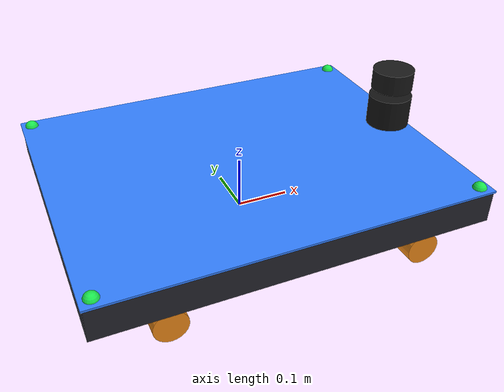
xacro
<?xml version="1.0"?>
<robot name="amr" xmlns:xacro="http://www.ros.org/wiki/xacro">

  <xacro:arg name="use_sim" default="false"/>
  <xacro:include filename="$(find amr_description)/urdf/wheels.urdf.xacro"/>
  <xacro:include filename="$(find amr_description)/urdf/sensors.urdf.xacro"/>

  <!-- Robot dimensions: 71.5cm long, 56.5cm wide (measured) -->
  <!-- MEASURE lx (half-wheelbase) and ly (half-track) from physical frame -->
  <xacro:property name="lx" value="0.231"/>  <!-- half front-to-rear axle distance: 46.2cm/2 (measured) -->
  <xacro:property name="ly" value="0.255"/>  <!-- half left-to-right axle distance: 51.0cm/2 (measured) -->
  <xacro:property name="wheel_z" value="-0.060"/>  <!-- wheel centre height from base_link -->

  <!-- Base footprint -->
  <link name="base_footprint"/>
  <joint name="base_footprint_joint" type="fixed">
    <parent link="base_footprint"/>
    <child  link="base_link"/>
    <origin xyz="0 0 0.080" rpy="0 0 0"/>
  </joint>

  <!-- Main chassis -->
  <link name="base_link">
    <!-- Charcoal body -->
    <visual name="chassis_body">
      <geometry><box size="0.715 0.565 0.060"/></geometry>
      <material name="charcoal"><color rgba="0.15 0.15 0.18 1"/></material>
    </visual>
    <!-- Bright blue perimeter accent strip -->
    <visual name="chassis_accent">
      <origin xyz="0 0 0.032" rpy="0 0 0"/>
      <geometry><box size="0.720 0.570 0.004"/></geometry>
      <material name="blue_accent"><color rgba="0.2 0.5 1.0 1"/></material>
    </visual>
    <collision>
      <geometry><box size="0.715 0.565 0.060"/></geometry>
    </collision>
    <inertial>
      <mass value="8.000"/>
      <!-- ixx=(1/12)*8*(0.565²+0.060²), iyy=(1/12)*8*(0.715²+0.060²), izz=(1/12)*8*(0.715²+0.565²) -->
      <inertia ixx="0.2152" iyy="0.3432" izz="0.5537"
               ixy="0" ixz="0" iyz="0"/>
    </inertial>
  </link>

  <!-- Four mecanum wheels: FL, FR, RL, RR -->
  <xacro:mecanum_wheel name="wheel_FL" x=" ${lx}" y=" ${ly}" z="${wheel_z}" reflect_y="1"/>
  <xacro:mecanum_wheel name="wheel_FR" x=" ${lx}" y="-${ly}" z="${wheel_z}" reflect_y="-1"/>
  <xacro:mecanum_wheel name="wheel_RL" x="-${lx}" y=" ${ly}" z="${wheel_z}" reflect_y="1"/>
  <xacro:mecanum_wheel name="wheel_RR" x="-${lx}" y="-${ly}" z="${wheel_z}" reflect_y="-1"/>

  <!-- Sensor tower — matte black cylinder stack below LiDAR -->
  <link name="sensor_tower">
    <visual>
      <geometry><cylinder radius="0.042" length="0.065"/></geometry>
      <material name="matte_black"><color rgba="0.08 0.08 0.08 1"/></material>
    </visual>
  </link>
  <joint name="sensor_tower_joint" type="fixed">
    <parent link="base_link"/>
    <child  link="sensor_tower"/>
    <origin xyz="0.327 0.0 0.063" rpy="0 0 0"/>
  </joint>

  <!-- Corner LED indicator spheres -->
  <xacro:macro name="corner_led" params="name x y">
    <link name="${name}">
      <visual>
        <geometry><sphere radius="0.013"/></geometry>
        <material name="led_green"><color rgba="0.1 0.9 0.3 1"/></material>
      </visual>
    </link>
    <joint name="${name}_joint" type="fixed">
      <parent link="base_link"/>
      <child  link="${name}"/>
      <origin xyz="${x} ${y} 0.032" rpy="0 0 0"/>
    </joint>
  </xacro:macro>

  <xacro:corner_led name="led_FL" x=" 0.340" y=" 0.265"/>
  <xacro:corner_led name="led_FR" x=" 0.340" y="-0.265"/>
  <xacro:corner_led name="led_RL" x="-0.340" y=" 0.265"/>
  <xacro:corner_led name="led_RR" x="-0.340" y="-0.265"/>

  <!-- ros2_control hardware interface — switches between sim and real -->
  <ros2_control name="AMRSystem" type="system">
    <hardware>
      <xacro:if value="$(arg use_sim)">
        <plugin>gz_ros2_control/GazeboSimSystem</plugin>
      </xacro:if>
      <xacro:unless value="$(arg use_sim)">
        <plugin>amr_hardware/AMRHardwareInterface</plugin>
        <param name="serial_port">/dev/amr_mcu</param>
        <param name="baud_rate">115200</param>
      </xacro:unless>
    </hardware>

    <xacro:macro name="wheel_joint_interface" params="name">
      <joint name="${name}_joint">
        <command_interface name="velocity">
          <param name="min">-37.6</param>
          <param name="max"> 37.6</param>
        </command_interface>
        <state_interface name="velocity"/>
        <state_interface name="position"/>
      </joint>
    </xacro:macro>

    <xacro:wheel_joint_interface name="wheel_FL"/>
    <xacro:wheel_joint_interface name="wheel_FR"/>
    <xacro:wheel_joint_interface name="wheel_RL"/>
    <xacro:wheel_joint_interface name="wheel_RR"/>
  </ros2_control>

</robot>

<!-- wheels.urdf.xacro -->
<robot xmlns:xacro="http://www.ros.org/wiki/xacro">

  <xacro:macro name="mecanum_wheel" params="name x y z reflect_y">
    <link name="${name}">
      <visual>
        <geometry><cylinder length="0.04" radius="0.030"/></geometry>
        <origin xyz="0 0 0" rpy="${pi/2} 0 0"/>
        <material name="orange_wheel"><color rgba="0.95 0.55 0.1 1"/></material>
      </visual>
      <collision>
        <geometry><cylinder length="0.04" radius="0.030"/></geometry>
        <origin xyz="0 0 0" rpy="${pi/2} 0 0"/>
      </collision>
      <inertial>
        <mass value="0.300"/>
        <inertia ixx="0.000900" iyy="0.000900" izz="0.000135"
                 ixy="0" ixz="0" iyz="0"/>
      </inertial>
    </link>

    <joint name="${name}_joint" type="continuous">
      <parent link="base_link"/>
      <child  link="${name}"/>
      <origin xyz="${x} ${y} ${z}" rpy="0 0 0"/>
      <axis xyz="0 1 0"/>
      <dynamics damping="0.01" friction="0.1"/>
    </joint>
  </xacro:macro>

</robot>

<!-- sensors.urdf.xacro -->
<robot xmlns:xacro="http://www.ros.org/wiki/xacro">

  <!-- LiDAR mount — MEASURE actual offsets from frame -->
  <link name="base_laser">
    <visual>
      <geometry><cylinder length="0.04" radius="0.04"/></geometry>
      <material name="black"><color rgba="0.1 0.1 0.1 1"/></material>
    </visual>
  </link>
  <joint name="base_laser_joint" type="fixed">
    <parent link="base_link"/>
    <child  link="base_laser"/>
    <origin xyz="0.327 0.0 0.13" rpy="0 0 ${pi}"/>
  </joint>

  <!-- IMU mount -->
  <link name="imu_link"/>
  <joint name="imu_joint" type="fixed">
    <parent link="base_link"/>
    <child  link="imu_link"/>
    <origin xyz="0.0 0.0 0.020" rpy="0 0 0"/>  <!-- UPDATE with measured offset -->
  </joint>

  <!-- Gazebo sensor plugins (only active when use_sim:=true) -->
  <xacro:if value="$(arg use_sim)">

    <!-- LiDAR -->
    <gazebo reference="base_laser">
      <sensor name="lidar" type="gpu_lidar">
        <gz_frame_id>base_laser</gz_frame_id>
        <topic>/scan</topic>
        <update_rate>10</update_rate>
        <lidar>
          <scan><horizontal>
            <samples>720</samples>
            <resolution>1</resolution>
            <min_angle>-3.14159</min_angle>
            <max_angle>3.14159</max_angle>
          </horizontal></scan>
          <range>
            <min>0.15</min><max>12.0</max><resolution>0.01</resolution>
          </range>
          <noise type="gaussian"><mean>0</mean><stddev>0.01</stddev></noise>
        </lidar>
        <always_on>true</always_on>
        <visualize>true</visualize>
      </sensor>
    </gazebo>

    <!-- IMU -->
    <gazebo reference="imu_link">
      <sensor name="imu_sensor" type="imu">
        <topic>/imu/data_raw</topic>
        <update_rate>100</update_rate>
        <imu>
          <angular_velocity>
            <x><noise type="gaussian"><mean>0</mean><stddev>0.009</stddev></noise></x>
            <y><noise type="gaussian"><mean>0</mean><stddev>0.009</stddev></noise></y>
            <z><noise type="gaussian"><mean>0</mean><stddev>0.009</stddev></noise></z>
          </angular_velocity>
          <linear_acceleration>
            <x><noise type="gaussian"><mean>0</mean><stddev>0.021</stddev></noise></x>
            <y><noise type="gaussian"><mean>0</mean><stddev>0.021</stddev></noise></y>
            <z><noise type="gaussian"><mean>0</mean><stddev>0.021</stddev></noise></z>
          </linear_acceleration>
        </imu>
        <always_on>true</always_on>
      </sensor>
    </gazebo>

    <!-- gz_ros2_control plugin -->
    <gazebo>
      <plugin filename="gz_ros2_control-system"
              name="gz_ros2_control::GazeboSimROS2ControlPlugin">
        <robot_param>robot_description</robot_param>
        <robot_param_node>robot_state_publisher</robot_param_node>
        <parameters>$(find amr_bringup)/config/controllers.yaml</parameters>
      </plugin>
    </gazebo>

  </xacro:if>

</robot>
